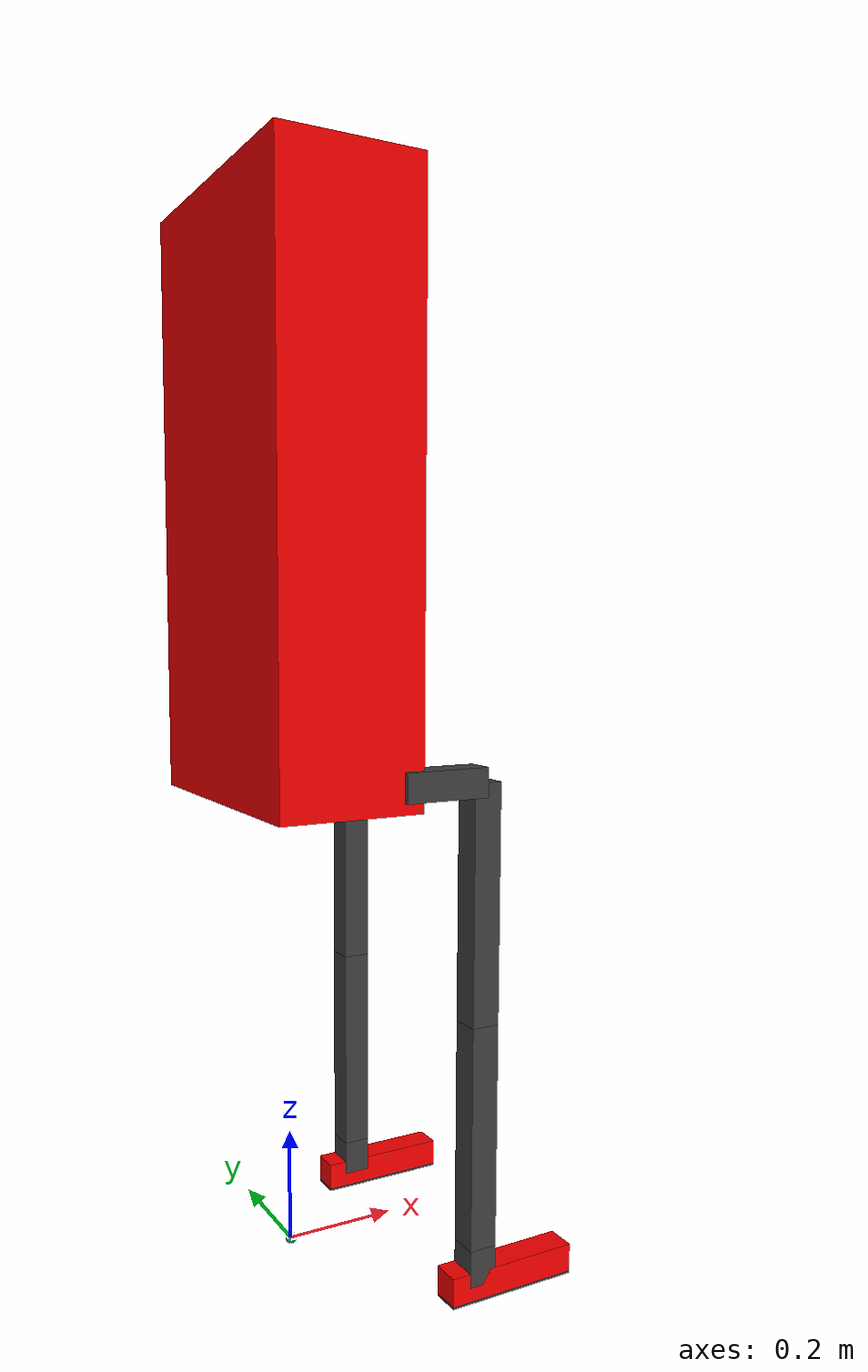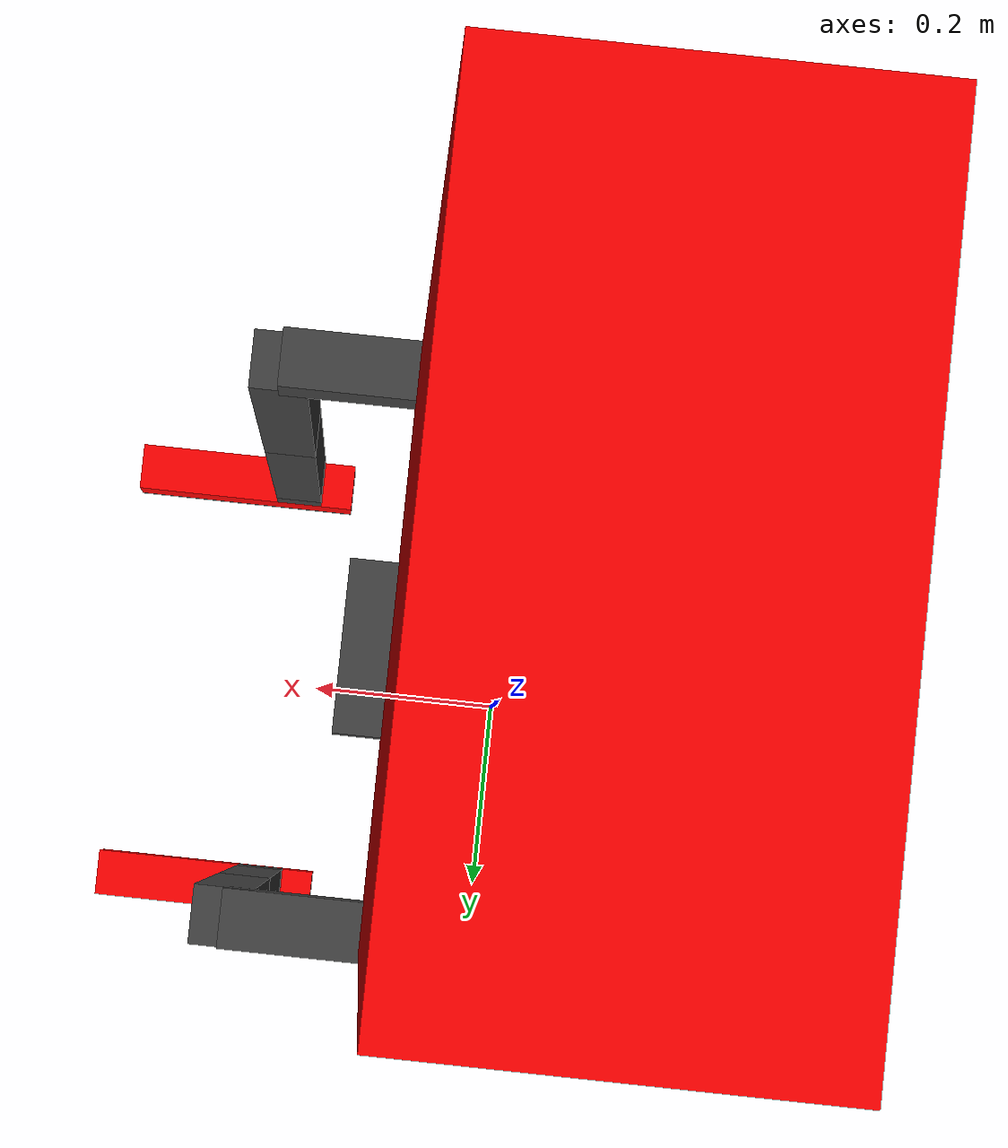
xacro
<?xml version="1.0" encoding="utf-8"?>
<robot name="exo_march6" xmlns:xacro="http://www.ros.org/wiki/xacro">

  <material name="red">
    <color rgba="1 0 0 1"/>
  </material>
  <material name="dark_gray">
    <color rgba="0.25 0.25 0.25 1"/>
  </material>

  <!-- ============================================================
       Global / convenience
       ============================================================ -->
  <xacro:property name="PI" value="3.141592653589793"/>

  <!-- Dimensions -->
  <xacro:property name="width" value="0.05"/>
  <xacro:property name="torso_width" value="0.5"/>

  <xacro:property name="hip_base_height" value="0.145"/>
  <xacro:property name="hip_aa_frame_height" value="0.1605"/>
  <xacro:property name="hip_aa_frame_width" value="0.151"/>

  <xacro:property name="upper_leg_height" value="0.410"/>
  <xacro:property name="upper_leg_offset" value="0.00"/>

  <xacro:property name="lower_leg_height" value="0.390"/>
  <xacro:property name="knee_offset" value="0.00"/>

  <xacro:property name="ankle_plate_length" value="0.115"/>
  <xacro:property name="ankle_plate_height" value="${ankle_plate_length - width}"/>
  <xacro:property name="ankle_plate_offset" value="0.00"/>

  <xacro:property name="foot_height_forward" value="0.184"/>
  <xacro:property name="foot_height_backward" value="0.059"/>
  <xacro:property name="foot_length" value="${foot_height_forward + foot_height_backward}"/>

  <!-- Masses -->
  <xacro:property name="mass_hip_base" value="8.686"/>
  <xacro:property name="mass_hip_aa" value="3.019"/>
  <xacro:property name="mass_upper_leg" value="8.161"/>
  <xacro:property name="mass_lower_leg" value="4.997"/>
  <xacro:property name="mass_foot" value="0.789"/>

  <xacro:property name="heel_pad_length" value="0.06"/>
  <xacro:property name="heel_pad_width"  value="${width}"/>
  <xacro:property name="heel_pad_thick"  value="0.004"/>
  <xacro:property name="sole_thick" value="0.004"/>

  <!-- Inertias -->
  <xacro:property name="I_hip_base_xx" value="0.303498"/>
  <xacro:property name="I_hip_base_xy" value="-0.000197304"/>
  <xacro:property name="I_hip_base_xz" value="0.0189663"/>
  <xacro:property name="I_hip_base_yy" value="0.239254"/>
  <xacro:property name="I_hip_base_yz" value="0.00122058"/>
  <xacro:property name="I_hip_base_zz" value="0.11822"/>

  <xacro:property name="I_hip_aa_xx" value="0.068391"/>
  <xacro:property name="I_hip_aa_xy" value="-0.0426776"/>
  <xacro:property name="I_hip_aa_xz" value="0.000171569"/>
  <xacro:property name="I_hip_aa_yy" value="0.0388633"/>
  <xacro:property name="I_hip_aa_yz" value="0.00117041"/>
  <xacro:property name="I_hip_aa_zz" value="0.104156"/>

  <xacro:property name="I_upper_leg_xx" value="1.68779"/>
  <xacro:property name="I_upper_leg_xy" value="-0.0439623"/>
  <xacro:property name="I_upper_leg_xz" value="0.249519"/>
  <xacro:property name="I_upper_leg_yy" value="1.68452"/>
  <xacro:property name="I_upper_leg_yz" value="0.0814673"/>
  <xacro:property name="I_upper_leg_zz" value="0.20142"/>

  <xacro:property name="I_lower_leg_xx" value="0.567226"/>
  <xacro:property name="I_lower_leg_xy" value="0.00351928"/>
  <xacro:property name="I_lower_leg_xz" value="0.0146315"/>
  <xacro:property name="I_lower_leg_yy" value="0.561191"/>
  <xacro:property name="I_lower_leg_yz" value="-0.019722"/>
  <xacro:property name="I_lower_leg_zz" value="0.0624652"/>

  <xacro:property name="I_foot_xx" value="0.00388523"/>
  <xacro:property name="I_foot_xy" value="-0.00209516"/>
  <xacro:property name="I_foot_xz" value="-0.00189858"/>
  <xacro:property name="I_foot_yy" value="0.00659119"/>
  <xacro:property name="I_foot_yz" value="-0.00168033"/>
  <xacro:property name="I_foot_zz" value="0.00630322"/>

  <!-- Joint limits -->
  <xacro:property name="hip_min" value="${-30.0 * PI/180.0}"/>
  <xacro:property name="hip_max" value="${105.0 * PI/180.0}"/>
  <xacro:property name="knee_min" value="${0.0}"/>
  <xacro:property name="knee_max" value="${105.0 * PI/180.0}"/>
  <xacro:property name="ankle_min" value="${-45.0 * PI/180.0}"/>
  <xacro:property name="ankle_max" value="${45.0 * PI/180.0}"/>

  <xacro:property name="haa_min" value="${-20.0 * PI/180.0}"/>
  <xacro:property name="haa_max" value="${ 20.0 * PI/180.0}"/>

  <!-- ============================================================
       Base / world sliders
       ============================================================ -->
  <link name="world"/>

  <link name="base_link">
    <inertial>
      <origin xyz="0 0 0" rpy="0 0 0"/>
      <mass value="1.0"/>
      <inertia ixx="0.1041667" ixy="0" ixz="0"
               iyy="0.0885417" iyz="0"
               izz="0.0260417"/>
    </inertial>
    <visual>
      <origin xyz="0 0 1.3" rpy="0 0 0"/>
      <geometry><box size="0.25 0.5 1"/></geometry>
      <material name="red"/>
    </visual>
    <collision>
      <origin xyz="0 0 1.3" rpy="0 0 0"/>
      <geometry><box size="0.25 0.5 1"/></geometry>
    </collision>
  </link>

  <link name="slider_z">
    <inertial>
      <origin xyz="0 0 0" rpy="0 0 0"/>
      <mass value="0.1"/>
      <inertia ixx="0.0002083" ixy="0" ixz="0"
               iyy="0.0002083" iyz="0"
               izz="0.0002083"/>
    </inertial>
    <collision><geometry><sphere radius="0.01"/></geometry></collision>
    <visual><geometry><sphere radius="0.01"/></geometry></visual>
  </link>

  <link name="slider_x">
    <inertial>
      <origin xyz="0 0 0" rpy="0 0 0"/>
      <mass value="0.1"/>
      <inertia ixx="0.0002083" ixy="0" ixz="0"
               iyy="0.0002083" iyz="0"
               izz="0.0002083"/>
    </inertial>
    <collision><geometry><sphere radius="0.01"/></geometry></collision>
    <visual><geometry><sphere radius="0.01"/></geometry></visual>
  </link>

  <joint name="base_z" type="prismatic">
    <origin xyz="0 0 0" rpy="0 0 ${PI}"/>
    <parent link="world"/>
    <child link="slider_z"/>
    <axis xyz="0 0 1"/>
    <limit lower="-0.5" upper="0.5" effort="500" velocity="1.0"/>
    <dynamics damping="5.0" friction="1.0"/>
  </joint>

  <joint name="base_x" type="prismatic">
    <origin xyz="0 0 0" rpy="0 0 0"/>
    <parent link="slider_z"/>
    <child link="slider_x"/>
    <axis xyz="1 0 0"/>
    <limit lower="-5.0" upper="5.0" effort="500" velocity="1.0"/>
    <dynamics damping="5.0" friction="0.5"/>
  </joint>

  <joint name="base_to_body" type="fixed">
    <parent link="slider_x"/>
    <child link="base_link"/>
  </joint>

  <!-- ============================================================
       Pelvis / hip_base
       ============================================================ -->
  <link name="hip_base">
    <inertial>
      <origin xyz="0 0 0" rpy="0 0 0"/>
      <mass value="${mass_hip_base}"/>
      <inertia ixx="${I_hip_base_xx}" ixy="${I_hip_base_xy}" ixz="${I_hip_base_xz}"
               iyy="${I_hip_base_yy}" iyz="${I_hip_base_yz}"
               izz="${I_hip_base_zz}"/>
    </inertial>
    <visual>
      <origin xyz="0 0 0" rpy="0 0 0"/>
      <geometry><box size="${hip_aa_frame_width} ${hip_base_height} ${width}"/></geometry>
      <material name="dark_gray"/>
    </visual>
    <collision>
      <origin xyz="0 0 0" rpy="0 0 0"/>
      <geometry><box size="${hip_aa_frame_width} ${hip_base_height} ${width}"/></geometry>
    </collision>
  </link>

  <!-- FIX: lowered pelvis slightly to ensure feet touch ground -->
  <joint name="pelvis_fixed" type="fixed">
    <origin xyz="-0.09 0 0.844" rpy="0 0 0"/>
    <parent link="base_link"/>
    <child link="hip_base"/>
  </joint>

  <!-- ============================================================
       Leg macro
       ============================================================ -->
  <xacro:macro name="march6_leg" params="prefix side_sign">

    <link name="${prefix}_hip_aa_side">
      <visual>
        <origin xyz="0 ${side_sign * hip_aa_frame_height/2.0} 0" rpy="0 0 0"/>
        <geometry><box size="${width} ${hip_aa_frame_height} ${width}"/></geometry>
        <material name="dark_gray"/>
      </visual>
      <collision>
        <origin xyz="0 ${side_sign * hip_aa_frame_height/2.0} 0" rpy="0 0 0"/>
        <geometry><box size="${width} ${hip_aa_frame_height} ${width}"/></geometry>
      </collision>
    </link>

    <joint name="${prefix}_hip_aa" type="fixed">
      <origin xyz="0 ${side_sign * hip_base_height/2.0} 0" rpy="0 0 0"/>
      <parent link="hip_base"/>
      <child link="${prefix}_hip_aa_side"/>
    </joint>

    <link name="${prefix}_hip_aa_front">
      <inertial>
        <origin xyz="${-hip_aa_frame_width/2.0} 0 0" rpy="0 0 0"/>
        <mass value="${mass_hip_aa}"/>
        <inertia ixx="${I_hip_aa_xx}" ixy="${I_hip_aa_xy}" ixz="${I_hip_aa_xz}"
                 iyy="${I_hip_aa_yy}" iyz="${I_hip_aa_yz}"
                 izz="${I_hip_aa_zz}"/>
      </inertial>
      <visual>
        <origin xyz="${-hip_aa_frame_width/2.0} 0 0" rpy="0 0 0"/>
        <geometry><box size="${hip_aa_frame_width} ${width} ${width}"/></geometry>
        <material name="dark_gray"/>
      </visual>
      <collision>
        <origin xyz="${-hip_aa_frame_width/2.0} 0 0" rpy="0 0 0"/>
        <geometry><box size="${hip_aa_frame_width} ${width} ${width}"/></geometry>
      </collision>
    </link>

    <joint name="${prefix}_hip_angle_fixed" type="fixed">
      <origin xyz="0 ${side_sign * hip_aa_frame_height} 0" rpy="0 0 0"/>
      <parent link="${prefix}_hip_aa_side"/>
      <child link="${prefix}_hip_aa_front"/>
    </joint>

    <link name="${prefix}_thigh">
      <inertial>
        <origin xyz="0 0 ${-upper_leg_height/2.0}" rpy="0 0 0"/>
        <mass value="${mass_upper_leg}"/>
        <inertia ixx="${I_upper_leg_xx}" ixy="${I_upper_leg_xy}" ixz="${I_upper_leg_xz}"
                 iyy="${I_upper_leg_yy}" iyz="${I_upper_leg_yz}"
                 izz="${I_upper_leg_zz}"/>
      </inertial>
      <visual>
        <origin xyz="0 0 ${-upper_leg_height/2.0}" rpy="0 0 0"/>
        <geometry><box size="${width} ${width} ${upper_leg_height}"/></geometry>
        <material name="dark_gray"/>
      </visual>
      <collision>
        <origin xyz="0 0 ${-upper_leg_height/2.0}" rpy="0 0 0"/>
        <geometry><box size="${width} ${width} ${upper_leg_height}"/></geometry>
      </collision>
    </link>

    <joint name="${prefix}_hip_revolute_joint" type="revolute">
      <origin xyz="${-hip_aa_frame_width} ${side_sign * upper_leg_offset} 0" rpy="0 0 0"/>
      <parent link="${prefix}_hip_aa_front"/>
      <child link="${prefix}_thigh"/>
      <axis xyz="0 1 0"/>
      <limit lower="${hip_min}" upper="${hip_max}" effort="200" velocity="3.0"/>
      <dynamics damping="0.3" friction="0.1"/>
    </joint>

    <link name="${prefix}_shank">
      <inertial>
        <origin xyz="0 0 ${-lower_leg_height/2.0}" rpy="0 0 0"/>
        <mass value="${mass_lower_leg}"/>
        <inertia ixx="${I_lower_leg_xx}" ixy="${I_lower_leg_xy}" ixz="${I_lower_leg_xz}"
                 iyy="${I_lower_leg_yy}" iyz="${I_lower_leg_yz}"
                 izz="${I_lower_leg_zz}"/>
      </inertial>
      <visual>
        <origin xyz="0 0 ${-lower_leg_height/2.0}" rpy="0 0 0"/>
        <geometry><box size="${width} ${width} ${lower_leg_height}"/></geometry>
        <material name="dark_gray"/>
      </visual>
      <collision>
        <origin xyz="0 0 ${-lower_leg_height/2.0}" rpy="0 0 0"/>
        <geometry><box size="${width} ${width} ${lower_leg_height}"/></geometry>
      </collision>
    </link>

    <joint name="${prefix}_knee_revolute_joint" type="revolute">
      <origin xyz="0 ${side_sign * knee_offset} ${-upper_leg_height}" rpy="0 0 0"/>
      <parent link="${prefix}_thigh"/>
      <child link="${prefix}_shank"/>
      <axis xyz="0 -1 0"/>
      <limit lower="${knee_min}" upper="${knee_max}" effort="200" velocity="3.5"/>
      <dynamics damping="0.4" friction="0.4"/>
    </joint>

    <link name="${prefix}_ankle_plate">
      <inertial>
        <origin xyz="0 0 ${-ankle_plate_height/2.0}" rpy="0 0 0"/>
        <mass value="0.01"/>
        <inertia ixx="1e-5" ixy="0" ixz="0"
                 iyy="1e-5" iyz="0"
                 izz="1e-5"/>
      </inertial>
      <visual>
        <origin xyz="0 0 ${-ankle_plate_height/2.0}" rpy="0 0 0"/>
        <geometry><box size="${width} ${width} ${ankle_plate_height}"/></geometry>
        <material name="dark_gray"/>
      </visual>
      <collision>
        <origin xyz="0 0 ${-ankle_plate_height/2.0}" rpy="0 0 0"/>
        <geometry><box size="${width} ${width} ${ankle_plate_height}"/></geometry>
      </collision>
    </link>

    <joint name="${prefix}_ankle_revolute_joint" type="revolute">
      <origin xyz="0 ${side_sign * ankle_plate_offset} ${-lower_leg_height}" rpy="0 0 0"/>
      <parent link="${prefix}_shank"/>
      <child link="${prefix}_ankle_plate"/>
      <axis xyz="0 1 0"/>
      <limit lower="${ankle_min}" upper="${ankle_max}" effort="200" velocity="2.5"/>
      <dynamics damping="0.6" friction="0.3"/>
    </joint>

    <link name="${prefix}_foot">
      <inertial>
        <origin xyz="${(foot_height_backward - foot_height_forward)/2.0} 0 0" rpy="0 0 0"/>
        <mass value="${mass_foot}"/>
        <inertia ixx="${I_foot_xx}" ixy="${I_foot_xy}" ixz="${I_foot_xz}"
                 iyy="${I_foot_yy}" iyz="${I_foot_yz}"
                 izz="${I_foot_zz}"/>
      </inertial>
      <visual>
        <origin xyz="${(foot_height_backward - foot_height_forward)/2.0} 0 0" rpy="0 0 0"/>
        <geometry><box size="${foot_length} ${width} ${width}"/></geometry>
        <material name="red"/>
      </visual>
      <collision>
        <origin xyz="${(foot_height_backward - foot_height_forward)/2.0} 0 0" rpy="0 0 0"/>
        <geometry><box size="${foot_length} ${width} ${width}"/></geometry>
      </collision>
    </link>

    <link name="${prefix}_sole_sensor">
      <inertial>
        <origin xyz="0 0 0" rpy="0 0 0"/>
        <mass value="0.001"/>
        <inertia ixx="1e-6" ixy="0" ixz="0"
                iyy="1e-6" iyz="0"
                izz="1e-6"/>
      </inertial>

      <visual name="${prefix}_sole_sensor_visual">
        <origin xyz="-0.063 0 0" rpy="0 0 0"/>
        <geometry>
          <!-- FULL SOLE -->
          <box size="${foot_length} ${width} ${sole_thick}"/>
        </geometry>
        <material name="dark_gray"/>
      </visual>
      <collision>
        <origin xyz="-0.063 0 0" rpy="0 0 0"/>
        <geometry>
          <box size="${foot_length} ${width} ${sole_thick}"/>
        </geometry>
      </collision>
    </link>

    <joint name="${prefix}_foot_to_sole_sensor" type="fixed">
      <origin xyz="0 0 ${-width/2.0 - sole_thick/2.0}" rpy="0 0 0"/>
      <parent link="${prefix}_foot"/>
      <child link="${prefix}_sole_sensor"/>
    </joint>

    <joint name="${prefix}_foot_angle_fixed" type="fixed">
      <origin xyz="0 0 ${-ankle_plate_height}" rpy="0 0 0"/>
      <parent link="${prefix}_ankle_plate"/>
      <child link="${prefix}_foot"/>
    </joint>

  <gazebo reference="${prefix}_sole_sensor">
    <sensor name="${prefix}_sole_contact" type="contact">
      <always_on>1</always_on>
      <update_rate>200</update_rate>
      <contact>
        <collision>${prefix}_ankle_plate_fixed_joint_lump__${prefix}_sole_sensor_collision_2</collision>
      </contact>
    </sensor>
  </gazebo>

  </xacro:macro>

  <xacro:march6_leg prefix="right" side_sign="1"/>
  <xacro:march6_leg prefix="left"  side_sign="-1"/>

  <!-- ros2_control -->
  <ros2_control name="exosuit" type="system">
    <hardware>
      <plugin>gz_ros2_control/GazeboSimSystem</plugin>
    </hardware>

    <joint name="left_hip_revolute_joint">
      <command_interface name="position"/>
      <state_interface name="position"/>
      <state_interface name="velocity"/>
      <state_interface name="effort"/>
    </joint>
    <joint name="left_knee_revolute_joint">
      <command_interface name="position"/>
      <state_interface name="position"/>
      <state_interface name="velocity"/>
      <state_interface name="effort"/>
    </joint>
    <joint name="left_ankle_revolute_joint">
      <command_interface name="position"/>
      <state_interface name="position"/>
      <state_interface name="velocity"/>
      <state_interface name="effort"/>
    </joint>

    <joint name="right_hip_revolute_joint">
      <command_interface name="position"/>
      <state_interface name="position"/>
      <state_interface name="velocity"/>
      <state_interface name="effort"/>
    </joint>
    <joint name="right_knee_revolute_joint">
      <command_interface name="position"/>
      <state_interface name="position"/>
      <state_interface name="velocity"/>
      <state_interface name="effort"/>
    </joint>
    <joint name="right_ankle_revolute_joint">
      <command_interface name="position"/>
      <state_interface name="position"/>
      <state_interface name="velocity"/>
      <state_interface name="effort"/>
    </joint>
  </ros2_control>

  <gazebo>
    <plugin filename="libign_ros2_control-system.so" name="ign_ros2_control::IgnitionROS2ControlPlugin">
      <robot_param>robot_description</robot_param>
      <robot_param_node>robot_state_publisher</robot_param_node>
      <parameters>$(find exo_control)/config/ros2_controller_march_6.yaml</parameters>
    </plugin>
  </gazebo>

</robot>
